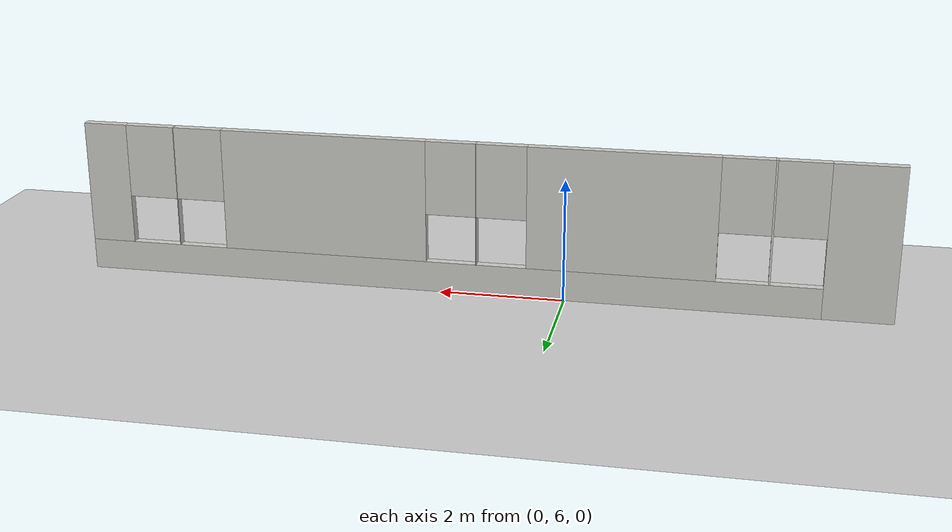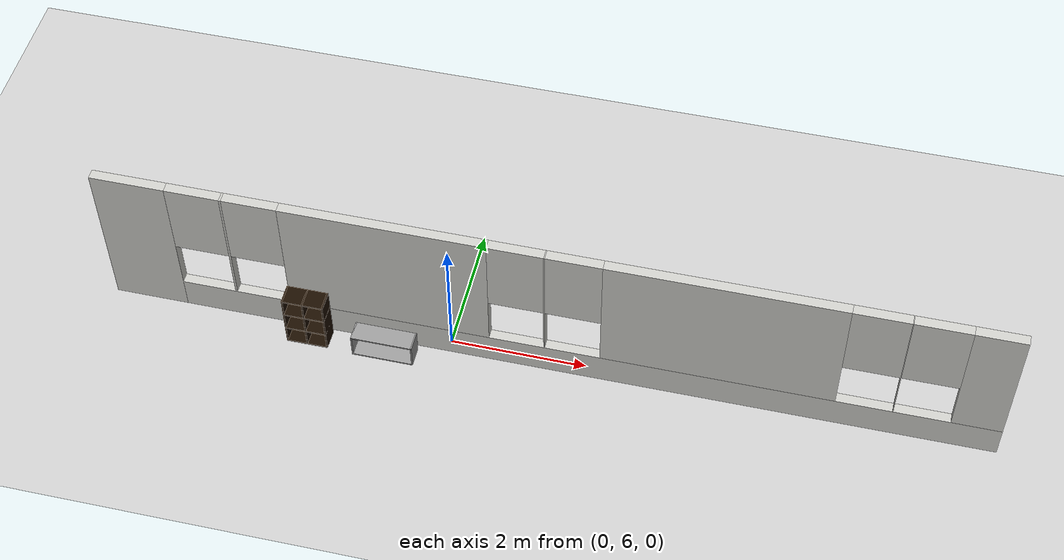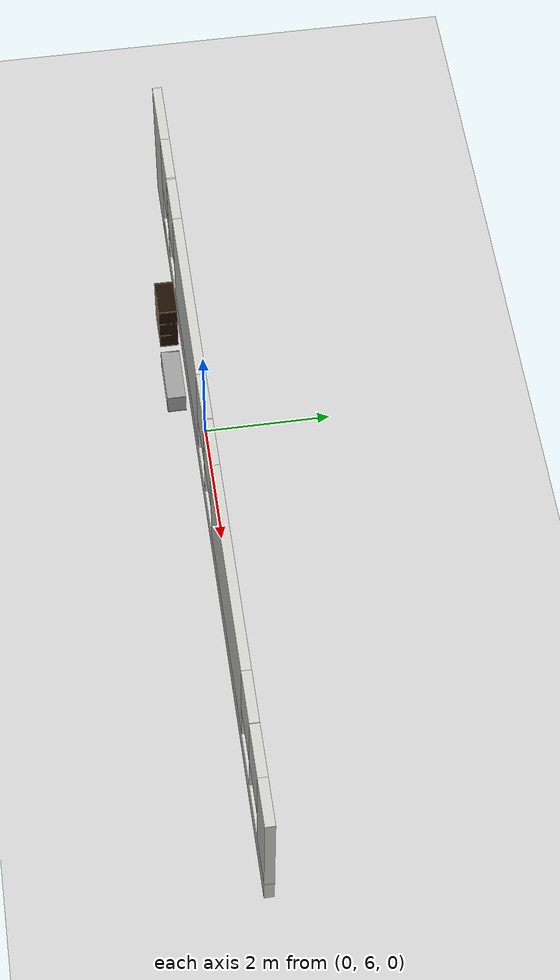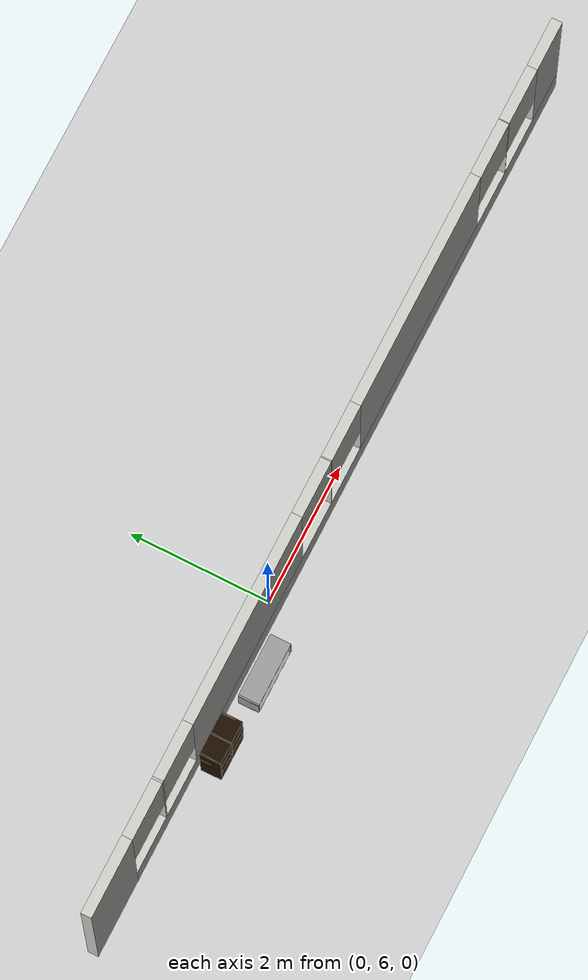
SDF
<sdf version="1.6">
 <world name="default">
  <model name="ground_plane">
   <static>1</static>
   <link name="link">
    <collision name="collision">
     <geometry><plane><normal>0 0 1</normal><size>100 100</size></plane></geometry>
     <surface><friction><ode><mu>100</mu><mu2>50</mu2></ode></friction></surface>
    </collision>
    <visual name="visual">
     <cast_shadows>0</cast_shadows>
     <geometry><plane><normal>0 0 1</normal><size>100 100</size></plane></geometry>
     <material>
      <script><uri>file://media/materials/scripts/gazebo.material</uri><name>Gazebo/Grey</name></script>
     </material>
    </visual>
   </link>
  </model>
  <model name="wall_window_tiles">
   <pose>1.41579 5.89691 0 0 -0 0</pose>
   <link name="Wall_0">
    <visual name="Wall_0_Visual_0">
     <pose>-5.9525 0 1.25 0 -0 0</pose>
     <geometry><box><size>1.095 0.15 2.5</size></box></geometry>
     <material>
      <script><uri>file://media/materials/scripts/gazebo.material</uri><name>Gazebo/CeilingTiled</name></script>
      <ambient>1 1 1 1</ambient>
     </material>
     <meta><layer>0</layer></meta>
    </visual>
    <collision name="Wall_0_Collision_0">
     <geometry><box><size>1.095 0.15 2.5</size></box></geometry>
     <pose>-5.9525 0 1.25 0 -0 0</pose>
    </collision>
    <visual name="Wall_0_Visual_1">
     <pose>0.5475 0 0.25 0 -0 0</pose>
     <geometry><box><size>11.905 0.15 0.5</size></box></geometry>
     <material>
      <script><uri>file://media/materials/scripts/gazebo.material</uri><name>Gazebo/CeilingTiled</name></script>
      <ambient>1 1 1 1</ambient>
     </material>
     <meta><layer>0</layer></meta>
    </visual>
    <collision name="Wall_0_Collision_1">
     <geometry><box><size>11.905 0.15 0.5</size></box></geometry>
     <pose>0.5475 0 0.25 0 -0 0</pose>
    </collision>
    <visual name="Wall_0_Visual_2">
     <pose>-4.59 0 1.5 0 -0 0</pose>
     <geometry><box><size>0.03 0.15 2</size></box></geometry>
     <material>
      <script><uri>file://media/materials/scripts/gazebo.material</uri><name>Gazebo/CeilingTiled</name></script>
      <ambient>1 1 1 1</ambient>
     </material>
     <meta><layer>0</layer></meta>
    </visual>
    <collision name="Wall_0_Collision_2">
     <geometry><box><size>0.03 0.15 2</size></box></geometry>
     <pose>-4.59 0 1.5 0 -0 0</pose>
    </collision>
    <visual name="Wall_0_Visual_3">
     <pose>-2.28975 0 1.5 0 -0 0</pose>
     <geometry><box><size>2.9705 0.15 2</size></box></geometry>
     <material>
      <script><uri>file://media/materials/scripts/gazebo.material</uri><name>Gazebo/CeilingTiled</name></script>
      <ambient>1 1 1 1</ambient>
     </material>
     <meta><layer>0</layer></meta>
    </visual>
    <collision name="Wall_0_Collision_3">
     <geometry><box><size>2.9705 0.15 2</size></box></geometry>
     <pose>-2.28975 0 1.5 0 -0 0</pose>
    </collision>
    <visual name="Wall_0_Visual_4">
     <pose>0.00375 0 1.5 0 -0 0</pose>
     <geometry><box><size>0.0165 0.15 2</size></box></geometry>
     <material>
      <script><uri>file://media/materials/scripts/gazebo.material</uri><name>Gazebo/CeilingTiled</name></script>
      <ambient>1 1 1 1</ambient>
     </material>
     <meta><layer>0</layer></meta>
    </visual>
    <collision name="Wall_0_Collision_4">
     <geometry><box><size>0.0165 0.15 2</size></box></geometry>
     <pose>0.00375 0 1.5 0 -0 0</pose>
    </collision>
    <visual name="Wall_0_Visual_5">
     <pose>2.4935 0 1.5 0 -0 0</pose>
     <geometry><box><size>3.363 0.15 2</size></box></geometry>
     <material>
      <script><uri>file://media/materials/scripts/gazebo.material</uri><name>Gazebo/CeilingTiled</name></script>
      <ambient>1 1 1 1</ambient>
     </material>
     <meta><layer>0</layer></meta>
    </visual>
    <collision name="Wall_0_Collision_5">
     <geometry><box><size>3.363 0.15 2</size></box></geometry>
     <pose>2.4935 0 1.5 0 -0 0</pose>
    </collision>
    <visual name="Wall_0_Visual_6">
     <pose>4.98 0 1.5 0 -0 0</pose>
     <geometry><box><size>0.01 0.15 2</size></box></geometry>
     <material>
      <script><uri>file://media/materials/scripts/gazebo.material</uri><name>Gazebo/CeilingTiled</name></script>
      <ambient>1 1 1 1</ambient>
     </material>
     <meta><layer>0</layer></meta>
    </visual>
    <collision name="Wall_0_Collision_6">
     <geometry><box><size>0.01 0.15 2</size></box></geometry>
     <pose>4.98 0 1.5 0 -0 0</pose>
    </collision>
    <visual name="Wall_0_Visual_7">
     <pose>6.1425 0 1.5 0 -0 0</pose>
     <geometry><box><size>0.715 0.15 2</size></box></geometry>
     <material>
      <script><uri>file://media/materials/scripts/gazebo.material</uri><name>Gazebo/CeilingTiled</name></script>
      <ambient>1 1 1 1</ambient>
     </material>
     <meta><layer>0</layer></meta>
    </visual>
    <collision name="Wall_0_Collision_7">
     <geometry><box><size>0.715 0.15 2</size></box></geometry>
     <pose>6.1425 0 1.5 0 -0 0</pose>
    </collision>
    <visual name="Wall_0_Visual_8">
     <pose>-5.005 0 1.9 0 -0 0</pose>
     <geometry><box><size>0.8 0.15 1.2</size></box></geometry>
     <material>
      <script><uri>file://media/materials/scripts/gazebo.material</uri><name>Gazebo/CeilingTiled</name></script>
      <ambient>1 1 1 1</ambient>
     </material>
     <meta><layer>0</layer></meta>
    </visual>
    <collision name="Wall_0_Collision_8">
     <geometry><box><size>0.8 0.15 1.2</size></box></geometry>
     <pose>-5.005 0 1.9 0 -0 0</pose>
    </collision>
    <visual name="Wall_0_Visual_9">
     <pose>-4.175 0 1.9 0 -0 0</pose>
     <geometry><box><size>0.8 0.15 1.2</size></box></geometry>
     <material>
      <script><uri>file://media/materials/scripts/gazebo.material</uri><name>Gazebo/CeilingTiled</name></script>
      <ambient>1 1 1 1</ambient>
     </material>
     <meta><layer>0</layer></meta>
    </visual>
    <collision name="Wall_0_Collision_9">
     <geometry><box><size>0.8 0.15 1.2</size></box></geometry>
     <pose>-4.175 0 1.9 0 -0 0</pose>
    </collision>
    <visual name="Wall_0_Visual_10">
     <pose>-0.4045 0 1.9 0 -0 0</pose>
     <geometry><box><size>0.8 0.15 1.2</size></box></geometry>
     <material>
      <script><uri>file://media/materials/scripts/gazebo.material</uri><name>Gazebo/CeilingTiled</name></script>
      <ambient>1 1 1 1</ambient>
     </material>
     <meta><layer>0</layer></meta>
    </visual>
    <collision name="Wall_0_Collision_10">
     <geometry><box><size>0.8 0.15 1.2</size></box></geometry>
     <pose>-0.4045 0 1.9 0 -0 0</pose>
    </collision>
    <visual name="Wall_0_Visual_11">
     <pose>0.412 0 1.9 0 -0 0</pose>
     <geometry><box><size>0.8 0.15 1.2</size></box></geometry>
     <material>
      <script><uri>file://media/materials/scripts/gazebo.material</uri><name>Gazebo/CeilingTiled</name></script>
      <ambient>1 1 1 1</ambient>
     </material>
     <meta><layer>0</layer></meta>
    </visual>
    <collision name="Wall_0_Collision_11">
     <geometry><box><size>0.8 0.15 1.2</size></box></geometry>
     <pose>0.412 0 1.9 0 -0 0</pose>
    </collision>
    <visual name="Wall_0_Visual_12">
     <pose>4.575 0 1.9 0 -0 0</pose>
     <geometry><box><size>0.8 0.15 1.2</size></box></geometry>
     <material>
      <script><uri>file://media/materials/scripts/gazebo.material</uri><name>Gazebo/CeilingTiled</name></script>
      <ambient>1 1 1 1</ambient>
     </material>
     <meta><layer>0</layer></meta>
    </visual>
    <collision name="Wall_0_Collision_12">
     <geometry><box><size>0.8 0.15 1.2</size></box></geometry>
     <pose>4.575 0 1.9 0 -0 0</pose>
    </collision>
    <visual name="Wall_0_Visual_13">
     <pose>5.385 0 1.9 0 -0 0</pose>
     <geometry><box><size>0.8 0.15 1.2</size></box></geometry>
     <material>
      <script><uri>file://media/materials/scripts/gazebo.material</uri><name>Gazebo/CeilingTiled</name></script>
      <ambient>1 1 1 1</ambient>
     </material>
     <meta><layer>0</layer></meta>
    </visual>
    <collision name="Wall_0_Collision_13">
     <geometry><box><size>0.8 0.15 1.2</size></box></geometry>
     <pose>5.385 0 1.9 0 -0 0</pose>
    </collision>
   </link>
   <static>1</static>
  </model>
  <model name="6_Cube_StorageE_0">
   <link name="Wall_0">
    <pose>0 0 0.01 0 -0 0</pose>
    <inertial>
     <mass>1.6201</mass>
     <inertia><ixx>0.0119</ixx><iyy>0.0631</iyy><izz>0.0513</izz><ixy>0</ixy><ixz>0</ixz><iyz>0</iyz></inertia>
    </inertial>
    <collision name="Wall_0_Collision"><geometry><box><size>0.616 0.296 0.02</size></box></geometry></collision>
    <visual name="Wall_0_Visual">
     <geometry><box><size>0.616 0.296 0.02</size></box></geometry>
     <material>
      <script><uri>file://media/materials/scripts/gazebo.material</uri><name>Gazebo/Grey</name></script>
      <ambient>0.105882 0.0509804 0 1</ambient>
     </material>
    </visual>
   </link>
   <joint name="0_2" type="fixed">
    <pose>-0.308 0 0 0 -0 0</pose>
    <parent>Wall_2</parent>
    <child>Wall_0</child>
    <axis>
     <xyz>1 0 0</xyz>
     <use_parent_model_frame>0</use_parent_model_frame>
     <limit><lower>-1e+16</lower><upper>1e+16</upper></limit>
    </axis>
   </joint>
   <joint name="0_12" type="fixed">
    <parent>Wall_12</parent>
    <child>Wall_0</child>
    <axis>
     <xyz>0 0 1</xyz>
     <use_parent_model_frame>0</use_parent_model_frame>
     <limit><lower>-1e+16</lower><upper>1e+16</upper></limit>
    </axis>
   </joint>
   <joint name="0_4" type="fixed">
    <pose>0.308 0 0 0 -0 0</pose>
    <parent>Wall_4</parent>
    <child>Wall_0</child>
    <axis>
     <xyz>1 0 0</xyz>
     <use_parent_model_frame>0</use_parent_model_frame>
     <limit><lower>-1e+16</lower><upper>1e+16</upper></limit>
    </axis>
   </joint>
   <link name="Wall_10">
    <pose>0 0 0.61 0 -0 0</pose>
    <inertial>
     <mass>1.6201</mass>
     <inertia><ixx>0.0119</ixx><iyy>0.0631</iyy><izz>0.0513</izz><ixy>0</ixy><ixz>0</ixz><iyz>0</iyz></inertia>
    </inertial>
    <collision name="Wall_10_Collision"><geometry><box><size>0.616 0.296 0.02</size></box></geometry></collision>
    <visual name="Wall_10_Visual">
     <geometry><box><size>0.616 0.296 0.02</size></box></geometry>
     <material>
      <script><uri>file://media/materials/scripts/gazebo.material</uri><name>Gazebo/Grey</name></script>
      <ambient>0.105882 0.0509804 0 1</ambient>
     </material>
    </visual>
   </link>
   <joint name="10_2" type="fixed">
    <pose>-0.308 0 0 0 -0 0</pose>
    <parent>Wall_2</parent>
    <child>Wall_10</child>
    <axis>
     <xyz>1 0 0</xyz>
     <use_parent_model_frame>0</use_parent_model_frame>
     <limit><lower>-1e+16</lower><upper>1e+16</upper></limit>
    </axis>
   </joint>
   <joint name="10_12" type="fixed">
    <parent>Wall_12</parent>
    <child>Wall_10</child>
    <axis>
     <xyz>0 0 1</xyz>
     <use_parent_model_frame>0</use_parent_model_frame>
     <limit><lower>-1e+16</lower><upper>1e+16</upper></limit>
    </axis>
   </joint>
   <joint name="10_4" type="fixed">
    <pose>0.308 0 0 0 -0 0</pose>
    <parent>Wall_4</parent>
    <child>Wall_10</child>
    <axis>
     <xyz>1 0 0</xyz>
     <use_parent_model_frame>0</use_parent_model_frame>
     <limit><lower>-1e+16</lower><upper>1e+16</upper></limit>
    </axis>
   </joint>
   <link name="Wall_12">
    <pose>0 0 0.4575 0 -0 0</pose>
    <inertial>
     <mass>2.4065</mass>
     <inertia><ixx>0.0177</ixx><iyy>0.1855</iyy><izz>0.168</izz><ixy>0</ixy><ixz>0</ixz><iyz>0</iyz></inertia>
    </inertial>
    <collision name="Wall_12_Collision"><geometry><box><size>0.02 0.296 0.915</size></box></geometry></collision>
    <visual name="Wall_12_Visual">
     <geometry><box><size>0.02 0.296 0.915</size></box></geometry>
     <material>
      <script><uri>file://media/materials/scripts/gazebo.material</uri><name>Gazebo/Grey</name></script>
      <ambient>0.105882 0.0509804 0 1</ambient>
     </material>
    </visual>
   </link>
   <link name="Wall_2">
    <pose>-0.298 0 0.4575 0 -0 0</pose>
    <inertial>
     <mass>2.4065</mass>
     <inertia><ixx>0.0177</ixx><iyy>0.1855</iyy><izz>0.168</izz><ixy>0</ixy><ixz>0</ixz><iyz>0</iyz></inertia>
    </inertial>
    <collision name="Wall_2_Collision"><geometry><box><size>0.02 0.296 0.915</size></box></geometry></collision>
    <visual name="Wall_2_Visual">
     <geometry><box><size>0.02 0.296 0.915</size></box></geometry>
     <material>
      <script><uri>file://media/materials/scripts/gazebo.material</uri><name>Gazebo/Grey</name></script>
      <ambient>0.105882 0.0509804 0 1</ambient>
     </material>
    </visual>
   </link>
   <link name="Wall_4">
    <pose>0.298 0 0.4575 0 -0 0</pose>
    <inertial>
     <mass>2.4065</mass>
     <inertia><ixx>0.0177</ixx><iyy>0.1855</iyy><izz>0.168</izz><ixy>0</ixy><ixz>0</ixz><iyz>0</iyz></inertia>
    </inertial>
    <collision name="Wall_4_Collision"><geometry><box><size>0.02 0.296 0.915</size></box></geometry></collision>
    <visual name="Wall_4_Visual">
     <geometry><box><size>0.02 0.296 0.915</size></box></geometry>
     <material>
      <script><uri>file://media/materials/scripts/gazebo.material</uri><name>Gazebo/Grey</name></script>
      <ambient>0.105882 0.0509804 0 1</ambient>
     </material>
    </visual>
   </link>
   <link name="Wall_6">
    <pose>0 0 0.905 0 -0 0</pose>
    <inertial>
     <mass>1.6201</mass>
     <inertia><ixx>0.0119</ixx><iyy>0.0631</iyy><izz>0.0513</izz><ixy>0</ixy><ixz>0</ixz><iyz>0</iyz></inertia>
    </inertial>
    <collision name="Wall_6_Collision"><geometry><box><size>0.616 0.296 0.02</size></box></geometry></collision>
    <visual name="Wall_6_Visual">
     <geometry><box><size>0.616 0.296 0.02</size></box></geometry>
     <material>
      <script><uri>file://media/materials/scripts/gazebo.material</uri><name>Gazebo/Grey</name></script>
      <ambient>0.105882 0.0509804 0 1</ambient>
     </material>
    </visual>
   </link>
   <joint name="6_2" type="fixed">
    <pose>-0.308 0 0 0 -0 0</pose>
    <parent>Wall_2</parent>
    <child>Wall_6</child>
    <axis>
     <xyz>2 0 0</xyz>
     <use_parent_model_frame>0</use_parent_model_frame>
     <limit><lower>-1e+16</lower><upper>1e+16</upper></limit>
    </axis>
   </joint>
   <joint name="6_12" type="fixed">
    <parent>Wall_12</parent>
    <child>Wall_6</child>
    <axis>
     <xyz>0 0 1</xyz>
     <use_parent_model_frame>0</use_parent_model_frame>
     <limit><lower>-1e+16</lower><upper>1e+16</upper></limit>
    </axis>
   </joint>
   <joint name="6_4" type="fixed">
    <pose>0.308 0 0 0 -0 0</pose>
    <parent>Wall_4</parent>
    <child>Wall_6</child>
    <axis>
     <xyz>1 0 0</xyz>
     <use_parent_model_frame>0</use_parent_model_frame>
     <limit><lower>-1e+16</lower><upper>1e+16</upper></limit>
    </axis>
   </joint>
   <link name="Wall_8">
    <pose>0 0 0.305 0 -0 0</pose>
    <inertial>
     <mass>1.6201</mass>
     <inertia><ixx>0.0119</ixx><iyy>0.0631</iyy><izz>0.0513</izz><ixy>0</ixy><ixz>0</ixz><iyz>0</iyz></inertia>
    </inertial>
    <collision name="Wall_8_Collision"><geometry><box><size>0.616 0.296 0.02</size></box></geometry></collision>
    <visual name="Wall_8_Visual">
     <geometry><box><size>0.616 0.296 0.02</size></box></geometry>
     <material>
      <script><uri>file://media/materials/scripts/gazebo.material</uri><name>Gazebo/Grey</name></script>
      <ambient>0.105882 0.0509804 0 1</ambient>
     </material>
    </visual>
   </link>
   <joint name="8_2" type="fixed">
    <pose>-0.308 0 0 0 -0 0</pose>
    <parent>Wall_2</parent>
    <child>Wall_8</child>
    <axis>
     <xyz>1 0 0</xyz>
     <use_parent_model_frame>0</use_parent_model_frame>
     <limit><lower>-1e+16</lower><upper>1e+16</upper></limit>
    </axis>
   </joint>
   <joint name="8_12" type="fixed">
    <parent>Wall_12</parent>
    <child>Wall_8</child>
    <axis>
     <xyz>0 0 1</xyz>
     <use_parent_model_frame>0</use_parent_model_frame>
     <limit><lower>-1e+16</lower><upper>1e+16</upper></limit>
    </axis>
   </joint>
   <joint name="8_4" type="fixed">
    <pose>0.308 0 0 0 -0 0</pose>
    <parent>Wall_4</parent>
    <child>Wall_8</child>
    <axis>
     <xyz>1 0 0</xyz>
     <use_parent_model_frame>0</use_parent_model_frame>
     <limit><lower>-1e+16</lower><upper>1e+16</upper></limit>
    </axis>
   </joint>
   <static>1</static>
   <pose>-2.04149 5.62712 0 0 -0 0</pose>
  </model>
  <model name="Wall_Cabinet_36x15W">
   <link name="Wall_0">
    <pose>0 0 0.01 0 -0 0</pose>
    <inertial>
     <mass>1.9796</mass>
     <inertia><ixx>0.0145</ixx><iyy>0.1511</iyy><izz>0.1367</izz><ixy>0</ixy><ixz>0</ixz><iyz>0</iyz></inertia>
    </inertial>
    <collision name="Wall_0_Collision"><geometry><box><size>0.91 0.296 0.02</size></box></geometry></collision>
    <visual name="Wall_0_Visual">
     <geometry><box><size>0.91 0.296 0.02</size></box></geometry>
     <material>
      <script><uri>file://media/materials/scripts/gazebo.material</uri><name>Gazebo/Grey</name></script>
      <ambient>1 1 1 1</ambient>
     </material>
    </visual>
   </link>
   <joint name="0_2" type="fixed">
    <pose>-0.455 0 0 0 -0 0</pose>
    <parent>Wall_2</parent>
    <child>Wall_0</child>
    <axis>
     <xyz>0 0 1</xyz>
     <use_parent_model_frame>0</use_parent_model_frame>
     <limit><lower>-1e+16</lower><upper>1e+16</upper></limit>
    </axis>
   </joint>
   <joint name="0_4" type="fixed">
    <pose>0.455 0 0 0 -0 0</pose>
    <parent>Wall_4</parent>
    <child>Wall_0</child>
    <axis>
     <xyz>0 0 1</xyz>
     <use_parent_model_frame>0</use_parent_model_frame>
     <limit><lower>-1e+16</lower><upper>1e+16</upper></limit>
    </axis>
   </joint>
   <joint name="0_8" type="fixed">
    <pose>0 -0.148 0 0 -0 0</pose>
    <parent>Wall_8</parent>
    <child>Wall_0</child>
    <axis>
     <xyz>0 0 1</xyz>
     <use_parent_model_frame>0</use_parent_model_frame>
     <limit><lower>-1e+16</lower><upper>1e+16</upper></limit>
    </axis>
   </joint>
   <link name="Wall_2">
    <pose>-0.445 0 0.192 0 -0 0</pose>
    <inertial>
     <mass>0.8353</mass>
     <inertia><ixx>0.0061</ixx><iyy>0.0164</iyy><izz>0.0103</izz><ixy>0</ixy><ixz>0</ixz><iyz>0</iyz></inertia>
    </inertial>
    <collision name="Wall_2_Collision"><geometry><box><size>0.02 0.296 0.384</size></box></geometry></collision>
    <visual name="Wall_2_Visual">
     <geometry><box><size>0.02 0.296 0.384</size></box></geometry>
     <material>
      <script><uri>file://media/materials/scripts/gazebo.material</uri><name>Gazebo/Grey</name></script>
      <ambient>1 1 1 1</ambient>
     </material>
    </visual>
   </link>
   <link name="Wall_4">
    <pose>0.445 0 0.192 0 -0 0</pose>
    <inertial>
     <mass>0.8353</mass>
     <inertia><ixx>0.0061</ixx><iyy>0.0164</iyy><izz>0.0103</izz><ixy>0</ixy><ixz>0</ixz><iyz>0</iyz></inertia>
    </inertial>
    <collision name="Wall_4_Collision"><geometry><box><size>0.02 0.296 0.384</size></box></geometry></collision>
    <visual name="Wall_4_Visual">
     <geometry><box><size>0.02 0.296 0.384</size></box></geometry>
     <material>
      <script><uri>file://media/materials/scripts/gazebo.material</uri><name>Gazebo/Grey</name></script>
      <ambient>1 1 1 1</ambient>
     </material>
    </visual>
   </link>
   <link name="Wall_6">
    <pose>0 0 0.374 0 -0 0</pose>
    <inertial>
     <mass>1.9796</mass>
     <inertia><ixx>0.0145</ixx><iyy>0.1511</iyy><izz>0.1367</izz><ixy>0</ixy><ixz>0</ixz><iyz>0</iyz></inertia>
    </inertial>
    <collision name="Wall_6_Collision"><geometry><box><size>0.91 0.296 0.02</size></box></geometry></collision>
    <visual name="Wall_6_Visual">
     <geometry><box><size>0.91 0.296 0.02</size></box></geometry>
     <material>
      <script><uri>file://media/materials/scripts/gazebo.material</uri><name>Gazebo/Grey</name></script>
      <ambient>1 1 1 1</ambient>
     </material>
    </visual>
   </link>
   <joint name="6_2" type="fixed">
    <pose>-0.455 0 0 0 -0 0</pose>
    <parent>Wall_2</parent>
    <child>Wall_6</child>
    <axis>
     <xyz>0 0 1</xyz>
     <use_parent_model_frame>0</use_parent_model_frame>
     <limit><lower>-1e+16</lower><upper>1e+16</upper></limit>
    </axis>
   </joint>
   <joint name="6_4" type="fixed">
    <pose>0.455 0 0 0 -0 0</pose>
    <parent>Wall_4</parent>
    <child>Wall_6</child>
    <axis>
     <xyz>0 0 1</xyz>
     <use_parent_model_frame>0</use_parent_model_frame>
     <limit><lower>-1e+16</lower><upper>1e+16</upper></limit>
    </axis>
   </joint>
   <joint name="6_8" type="fixed">
    <pose>0 -0.148 0 0 -0 0</pose>
    <parent>Wall_8</parent>
    <child>Wall_6</child>
    <axis>
     <xyz>0 0 1</xyz>
     <use_parent_model_frame>0</use_parent_model_frame>
     <limit><lower>-1e+16</lower><upper>1e+16</upper></limit>
    </axis>
   </joint>
   <link name="Wall_8">
    <pose>0 -0.138 0.19 0 -0 0</pose>
    <inertial>
     <mass>2.5302</mass>
     <inertia><ixx>0.0305</ixx><iyy>0.1732</iyy><izz>0.2035</izz><ixy>0</ixy><ixz>0</ixz><iyz>0</iyz></inertia>
    </inertial>
    <collision name="Wall_8_Collision"><geometry><box><size>0.906 0.02 0.38</size></box></geometry></collision>
    <visual name="Wall_8_Visual">
     <geometry><box><size>0.906 0.02 0.38</size></box></geometry>
     <material>
      <script><uri>file://media/materials/scripts/gazebo.material</uri><name>Gazebo/Grey</name></script>
      <ambient>1 1 1 1</ambient>
     </material>
    </visual>
   </link>
   <joint name="8_2" type="fixed">
    <pose>-0.453 0 0 0 -0 0</pose>
    <parent>Wall_2</parent>
    <child>Wall_8</child>
    <axis>
     <xyz>0 1 0</xyz>
     <use_parent_model_frame>0</use_parent_model_frame>
     <limit><lower>-1e+16</lower><upper>1e+16</upper></limit>
    </axis>
   </joint>
   <joint name="8_4" type="fixed">
    <pose>0.453 0 0 0 -0 0</pose>
    <parent>Wall_4</parent>
    <child>Wall_8</child>
    <axis>
     <xyz>0 1 0</xyz>
     <use_parent_model_frame>0</use_parent_model_frame>
     <limit><lower>-1e+16</lower><upper>1e+16</upper></limit>
    </axis>
   </joint>
   <static>1</static>
   <pose>-0.9 5.6 0 0 -0 3.1415</pose>
  </model>
 </world>
</sdf>
